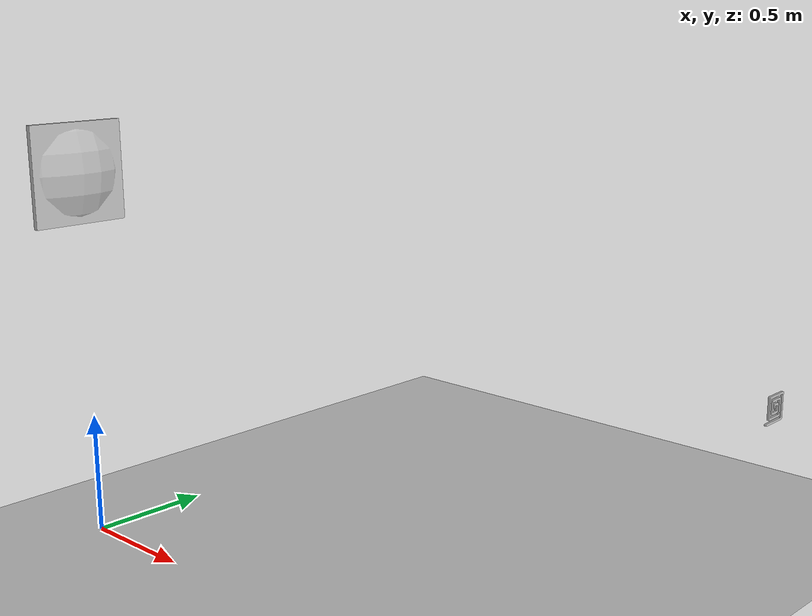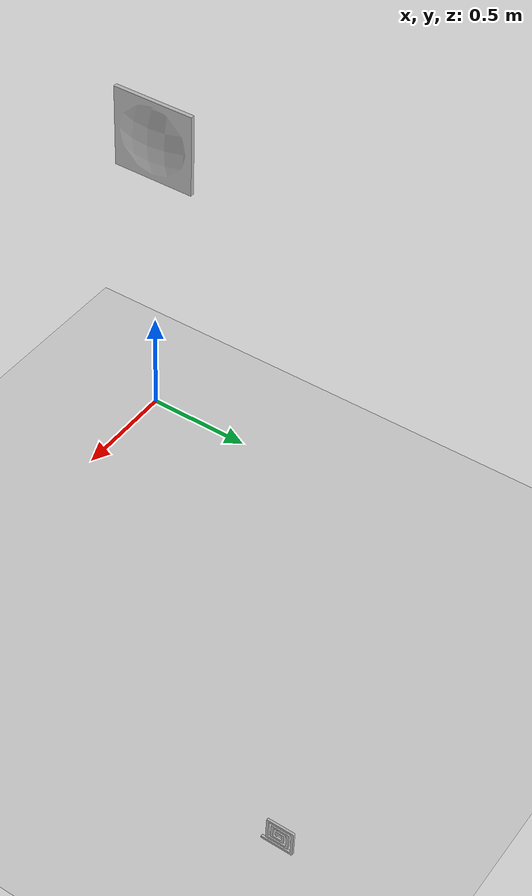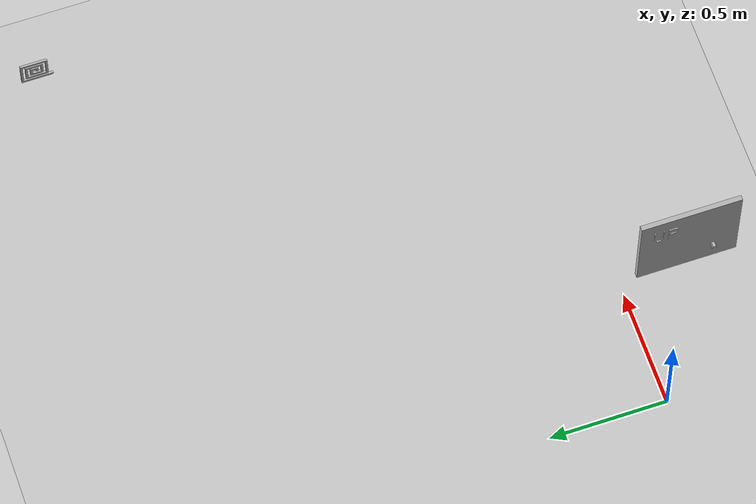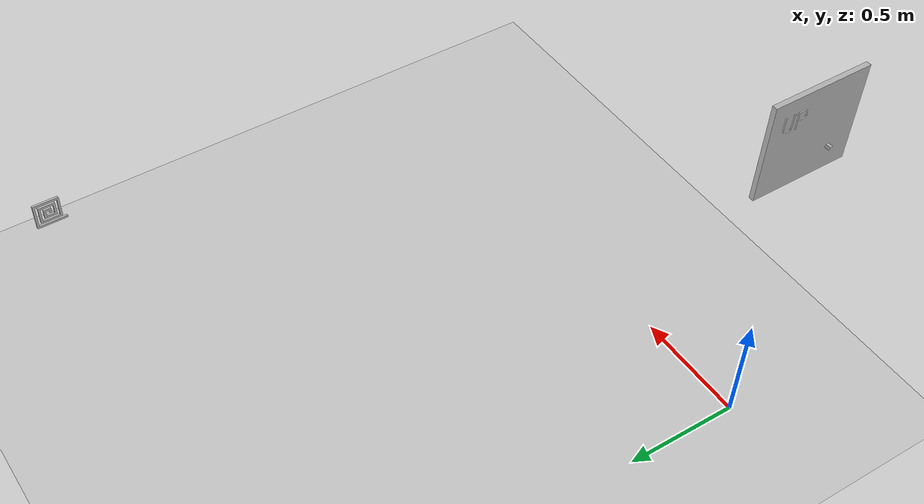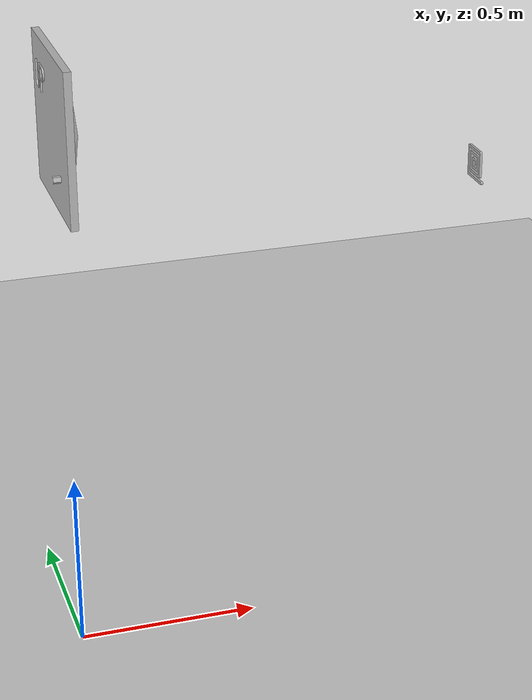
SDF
<?xml version="1.0"?>
<sdf version="1.6">
  <world name="default">
    <include>
      <uri>model://ground_plane</uri>
    </include>

     <include>
      <uri>model://sun</uri>
    </include>

    <model name="reader_model">
      <link name="link">
        <pose>0 0 1.5 0 0 0</pose>

        <collision name="reader_collision">
          <geometry>
          <mesh>
            <uri>/home/manolofc/workspace/gazebo_rfid_plugin/worlds/antenna.stl</uri>
            <scale>1 1 1</scale>
          </mesh>
          </geometry>
        </collision>

        <visual name="reader_visual">
        <geometry>
          <mesh>
            <uri>/home/manolofc/workspace/gazebo_rfid_plugin/worlds/antenna.stl</uri>
            <scale>1 1 1</scale>
          </mesh>
        </geometry>
        </visual>

        <sensor name='my_reader' type='rfid'>
              <topic>/reader_topic_name</topic>
              <always_on>1</always_on>
        </sensor>
      </link>
    </model>

    <model name="tag_model">
      <link name="link">
        <pose>2 2 0.5 0 0 0</pose>

        <collision name="tag_collision">
          <geometry>
          <mesh>
            <uri>/home/manolofc/workspace/gazebo_rfid_plugin/worlds/tag.stl</uri>
            <scale>0.005 0.005 0.005</scale>
          </mesh>
          </geometry>
        </collision>

        <visual name="tag_visual">
        <geometry>
          <mesh>
            <uri>/home/manolofc/workspace/gazebo_rfid_plugin/worlds/tag.stl</uri>
            <scale>0.005 0.005 0.005</scale>
          </mesh>
        </geometry>
        </visual>

        <sensor name='my_tag' type='rfidtag'>
              <always_on>1</always_on>
              <topic>/tag_topic_name</topic>
        </sensor>
      </link>
    </model>

  </world>
</sdf>
